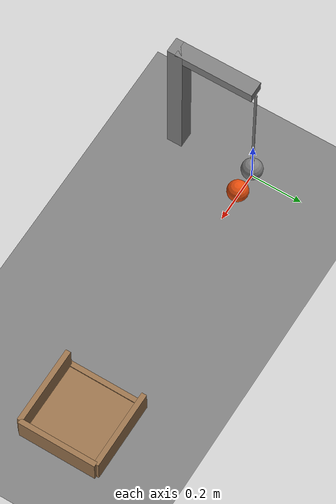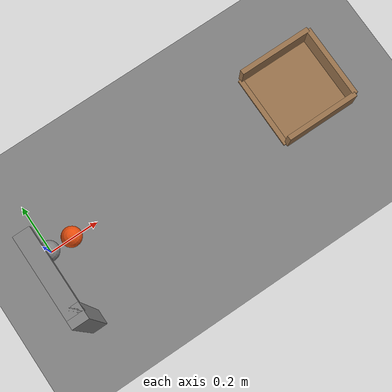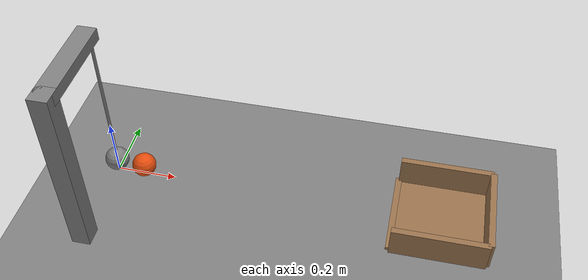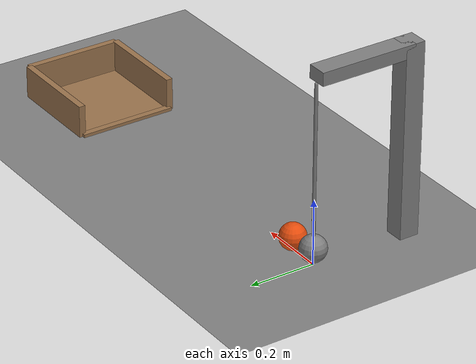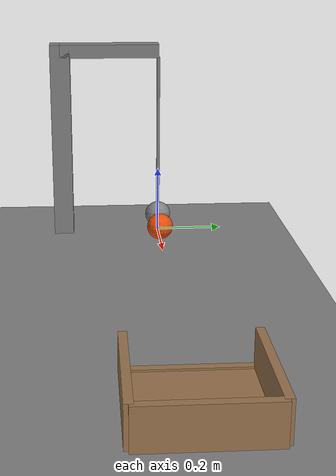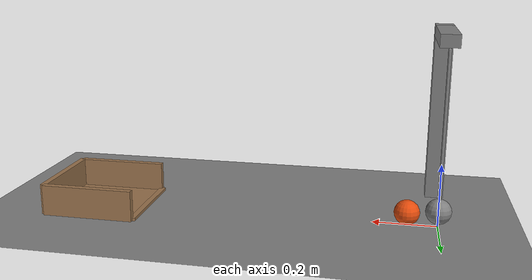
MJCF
<mujoco model="pendulum_strikes_ball_into_cup">
  <compiler angle="radian"/>
  <option timestep="0.002"/>
  <worldbody>
    <geom name="floor" type="plane" size="6 6 0.1" friction="0.8 0.005 0.001"/>
    <geom name="pendulum_stand_arm" type="box" pos="0 -0.15 0.575" size="0.03 0.15 0.02"/>
    <geom name="pendulum_stand_post" type="box" pos="0 -0.3 0.2975" size="0.03 0.03 0.2975"/>
    <body name="pendulum" pos="0 0 0.55">
      <joint name="pivot" type="hinge" pos="0 0 0" axis="0 1 0"/>
      <geom name="pendulum_bob" type="sphere" pos="0 0 -0.5" size="0.04" mass="0.5"/>
      <geom name="pendulum_rod" type="capsule" size="0.005" fromto="0 0 0 0 0 -0.46" mass="0.05"/>
    </body>
    <body name="ball" pos="0.095 0 0.04">
      <freejoint/>
      <geom name="ball" type="sphere" pos="0 0 0" size="0.04" mass="0.1" condim="6" friction="0.8 0.005 0.001" rgba="0.9 0.3 0.05 1"/>
    </body>
    <body name="cup">
      <geom name="cup_base" type="box" pos="1.095 0 0.0025" size="0.15 0.15 0.0025" friction="1 0.02 0.03" solref="0.01 1" rgba="0.6 0.45 0.3 1"/>
      <geom name="cup_near_wall" type="box" pos="0.945 0 0.005" size="0.01 0.15 0.005" friction="1 0.02 0.03" solref="0.01 1" rgba="0.6 0.45 0.3 1"/>
      <geom name="cup_far_wall" type="box" pos="1.245 0 0.05" size="0.01 0.15 0.05" friction="1 0.02 0.03" solref="0.01 1" rgba="0.6 0.45 0.3 1"/>
      <geom name="cup_left_wall" type="box" pos="1.095 0.15 0.05" size="0.15 0.01 0.05" friction="1 0.02 0.03" solref="0.01 1" rgba="0.6 0.45 0.3 1"/>
      <geom name="cup_right_wall" type="box" pos="1.095 -0.15 0.05" size="0.15 0.01 0.05" friction="1 0.02 0.03" solref="0.01 1" rgba="0.6 0.45 0.3 1"/>
    </body>
  </worldbody>
  <keyframe>
    <key name="start" qpos="0.785398 0.095 0 0.04 1 0 0 0" qvel="0 0 0 0 0 0 0"/>
  </keyframe>
</mujoco>
